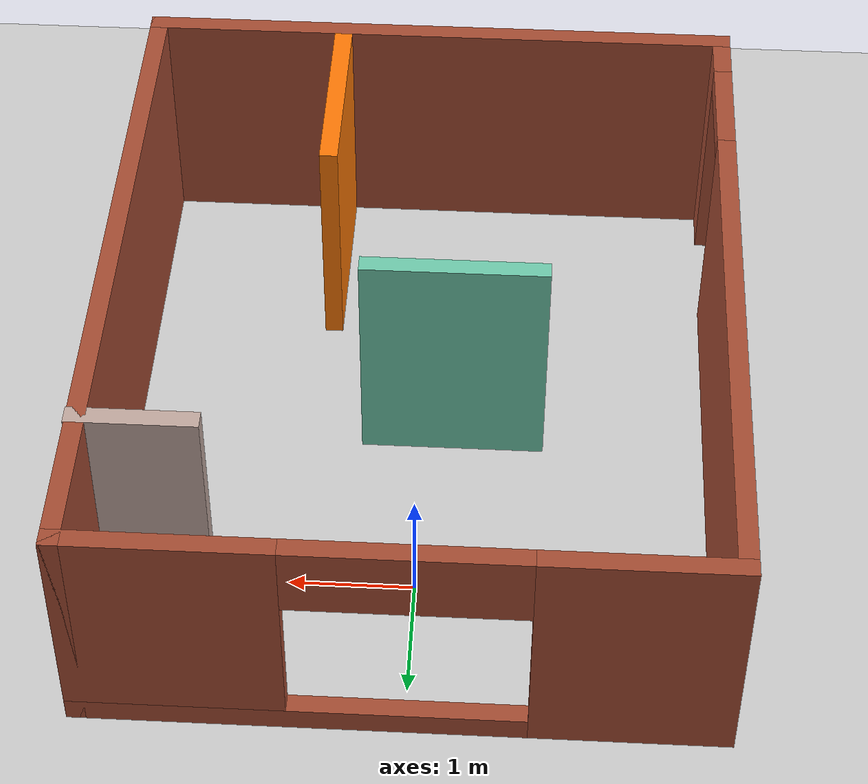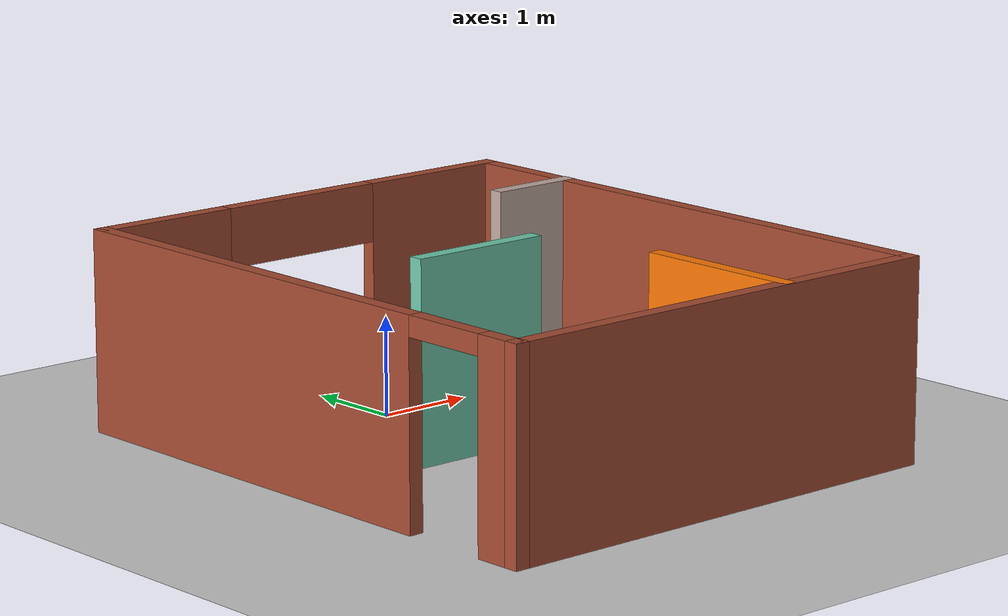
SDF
<sdf version="1.6">
 <world name="default">
  <light name="sun" type="directional">
   <pose>0 0 10 0 -0 0</pose>
   <diffuse>0.8 0.8 0.8 1</diffuse>
   <specular>0.2 0.2 0.2 1</specular>
   <attenuation>
    <range>1000</range>
    <constant>0.9</constant>
    <linear>0.01</linear>
    <quadratic>0.001</quadratic>
   </attenuation>
   <direction>-0.5 0.1 -0.9</direction>
  </light>
  <model name="ground_plane">
   <static>1</static>
   <link name="link">
    <collision name="collision">
     <geometry><plane><normal>0 0 1</normal><size>100 100</size></plane></geometry>
     <surface>
      <contact><collide_bitmask>65535</collide_bitmask></contact>
      <friction><ode><mu>100</mu><mu2>50</mu2></ode></friction>
     </surface>
    </collision>
    <visual name="visual">
     <cast_shadows>0</cast_shadows>
     <geometry><plane><normal>0 0 1</normal><size>100 100</size></plane></geometry>
     <material>
      <script><uri>file://media/materials/scripts/gazebo.material</uri><name>Gazebo/Grey</name></script>
     </material>
    </visual>
   </link>
  </model>
  <gravity>0 0 -9.8</gravity>
  <magnetic_field>6e-06 2.3e-05 -4.2e-05</magnetic_field>
  <atmosphere type="adiabatic"/>
  <physics name="default_physics" default="0" type="ode">
   <max_step_size>0.001</max_step_size>
   <real_time_factor>1</real_time_factor>
   <real_time_update_rate>1000</real_time_update_rate>
  </physics>
  <scene><ambient>0.4 0.4 0.4 1</ambient><background>0.7 0.7 0.7 1</background><shadows>1</shadows></scene>
  <spherical_coordinates>
   <surface_model>EARTH_WGS84</surface_model>
   <latitude_deg>0</latitude_deg>
   <longitude_deg>0</longitude_deg>
   <elevation>0</elevation>
   <heading_deg>0</heading_deg>
  </spherical_coordinates>
  <model name="Untitled">
   <pose>0.049898 -1.61414 0 0 -0 0</pose>
   <link name="Wall_0">
    <collision name="Wall_0_Collision">
     <geometry><box><size>5 0.15 2</size></box></geometry>
     <pose>0 0 1 0 -0 0</pose>
    </collision>
    <visual name="Wall_0_Visual">
     <pose>0 0 1 0 -0 0</pose>
     <geometry><box><size>5 0.15 2</size></box></geometry>
     <material>
      <script><uri>file://media/materials/scripts/gazebo.material</uri><name>Gazebo/Bricks</name></script>
      <ambient>1 1 1 1</ambient>
     </material>
     <meta><layer>0</layer></meta>
    </visual>
    <pose>-0.0055 -2.925 0 0 -0 3.14159</pose>
   </link>
   <link name="Wall_1">
    <pose>-2.4305 0 0 0 -0 1.5708</pose>
    <visual name="Wall_1_Visual_0">
     <pose>-2.75372 0 1 0 -0 0</pose>
     <geometry><box><size>0.492566 0.15 2</size></box></geometry>
     <material>
      <script><uri>file://media/materials/scripts/gazebo.material</uri><name>Gazebo/Bricks</name></script>
      <ambient>1 1 1 1</ambient>
     </material>
     <meta><layer>0</layer></meta>
    </visual>
    <collision name="Wall_1_Collision_0">
     <geometry><box><size>0.492566 0.15 2</size></box></geometry>
     <pose>-2.75372 0 1 0 -0 0</pose>
    </collision>
    <visual name="Wall_1_Visual_1">
     <pose>0.696283 0 1 0 -0 0</pose>
     <geometry><box><size>4.60743 0.15 2</size></box></geometry>
     <material>
      <script><uri>file://media/materials/scripts/gazebo.material</uri><name>Gazebo/Bricks</name></script>
      <ambient>1 1 1 1</ambient>
     </material>
     <meta><layer>0</layer></meta>
    </visual>
    <collision name="Wall_1_Collision_1">
     <geometry><box><size>4.60743 0.15 2</size></box></geometry>
     <pose>0.696283 0 1 0 -0 0</pose>
    </collision>
    <visual name="Wall_1_Visual_2">
     <pose>-2.05743 0 1.9 0 -0 0</pose>
     <geometry><box><size>0.9 0.15 0.2</size></box></geometry>
     <material>
      <script><uri>file://media/materials/scripts/gazebo.material</uri><name>Gazebo/Bricks</name></script>
      <ambient>1 1 1 1</ambient>
     </material>
     <meta><layer>0</layer></meta>
    </visual>
    <collision name="Wall_1_Collision_2">
     <geometry><box><size>0.9 0.15 0.2</size></box></geometry>
     <pose>-2.05743 0 1.9 0 -0 0</pose>
    </collision>
   </link>
   <link name="Wall_2">
    <pose>-0.0055 2.925 0 0 -0 0</pose>
    <visual name="Wall_2_Visual_0">
     <pose>-1.73112 0 1 0 -0 0</pose>
     <geometry><box><size>1.53775 0.15 2</size></box></geometry>
     <material>
      <script><uri>file://media/materials/scripts/gazebo.material</uri><name>Gazebo/Bricks</name></script>
      <ambient>1 1 1 1</ambient>
     </material>
     <meta><layer>0</layer></meta>
    </visual>
    <collision name="Wall_2_Collision_0">
     <geometry><box><size>1.53775 0.15 2</size></box></geometry>
     <pose>-1.73112 0 1 0 -0 0</pose>
    </collision>
    <visual name="Wall_2_Visual_1">
     <pose>0.768876 0 0.1 0 -0 0</pose>
     <geometry><box><size>3.46225 0.15 0.2</size></box></geometry>
     <material>
      <script><uri>file://media/materials/scripts/gazebo.material</uri><name>Gazebo/Bricks</name></script>
      <ambient>1 1 1 1</ambient>
     </material>
     <meta><layer>0</layer></meta>
    </visual>
    <collision name="Wall_2_Collision_1">
     <geometry><box><size>3.46225 0.15 0.2</size></box></geometry>
     <pose>0.768876 0 0.1 0 -0 0</pose>
    </collision>
    <visual name="Wall_2_Visual_2">
     <pose>1.66888 0 1.1 0 -0 0</pose>
     <geometry><box><size>1.66225 0.15 1.8</size></box></geometry>
     <material>
      <script><uri>file://media/materials/scripts/gazebo.material</uri><name>Gazebo/Bricks</name></script>
      <ambient>1 1 1 1</ambient>
     </material>
     <meta><layer>0</layer></meta>
    </visual>
    <collision name="Wall_2_Collision_2">
     <geometry><box><size>1.66225 0.15 1.8</size></box></geometry>
     <pose>1.66888 0 1.1 0 -0 0</pose>
    </collision>
    <visual name="Wall_2_Visual_3">
     <pose>-0.062247 0 1.7 0 -0 0</pose>
     <geometry><box><size>1.8 0.15 0.6</size></box></geometry>
     <material>
      <script><uri>file://media/materials/scripts/gazebo.material</uri><name>Gazebo/Bricks</name></script>
      <ambient>1 1 1 1</ambient>
     </material>
     <meta><layer>0</layer></meta>
    </visual>
    <collision name="Wall_2_Collision_3">
     <geometry><box><size>1.8 0.15 0.6</size></box></geometry>
     <pose>-0.062247 0 1.7 0 -0 0</pose>
    </collision>
   </link>
   <link name="Wall_3">
    <collision name="Wall_3_Collision">
     <geometry><box><size>6 0.15 2</size></box></geometry>
     <pose>0 0 1 0 -0 0</pose>
    </collision>
    <visual name="Wall_3_Visual">
     <pose>0 0 1 0 -0 0</pose>
     <geometry><box><size>6 0.15 2</size></box></geometry>
     <material>
      <script><uri>file://media/materials/scripts/gazebo.material</uri><name>Gazebo/Bricks</name></script>
      <ambient>1 1 1 1</ambient>
     </material>
     <meta><layer>0</layer></meta>
    </visual>
    <pose>2.4195 0 0 0 0 -1.5708</pose>
   </link>
   <link name="Wall_5">
    <collision name="Wall_5_Collision">
     <geometry><box><size>1 0.15 2</size></box></geometry>
     <pose>0 0 1 0 -0 0</pose>
    </collision>
    <visual name="Wall_5_Visual">
     <pose>0 0 1 0 -0 0</pose>
     <geometry><box><size>1 0.15 2</size></box></geometry>
     <material>
      <script><uri>file://media/materials/scripts/gazebo.material</uri><name>Gazebo/Grey</name></script>
      <ambient>0.760784 0.662745 0.627451 1</ambient>
     </material>
     <meta><layer>0</layer></meta>
    </visual>
    <pose>2.0055 1.755 0 0 -0 3.14159</pose>
   </link>
   <link name="Wall_7">
    <collision name="Wall_7_Collision">
     <geometry><box><size>1.5 0.15 2</size></box></geometry>
     <pose>0 0 1 0 -0 0</pose>
    </collision>
    <visual name="Wall_7_Visual">
     <pose>0 0 1 0 -0 0</pose>
     <geometry><box><size>1.5 0.15 2</size></box></geometry>
     <material>
      <script><uri>file://media/materials/scripts/gazebo.material</uri><name>Gazebo/Grey</name></script>
      <ambient>0.435294 0.796078 0.67451 1</ambient>
     </material>
     <meta><layer>0</layer></meta>
    </visual>
    <pose>-0.2755 0.028 0 0 -0 0</pose>
   </link>
   <link name="Wall_9">
    <collision name="Wall_9_Collision">
     <geometry><box><size>1.75 0.15 2</size></box></geometry>
     <pose>0 0 1 0 -0 0</pose>
    </collision>
    <visual name="Wall_9_Visual">
     <pose>0 0 1 0 -0 0</pose>
     <geometry><box><size>1.75 0.15 2</size></box></geometry>
     <material>
      <script><uri>file://media/materials/scripts/gazebo.material</uri><name>Gazebo/Grey</name></script>
      <ambient>0.996078 0.47451 0.0196078 1</ambient>
     </material>
     <meta><layer>0</layer></meta>
    </visual>
    <pose>0.8165 -2.105 0 0 -0 1.5708</pose>
   </link>
   <static>1</static>
  </model>
 </world>
</sdf>
